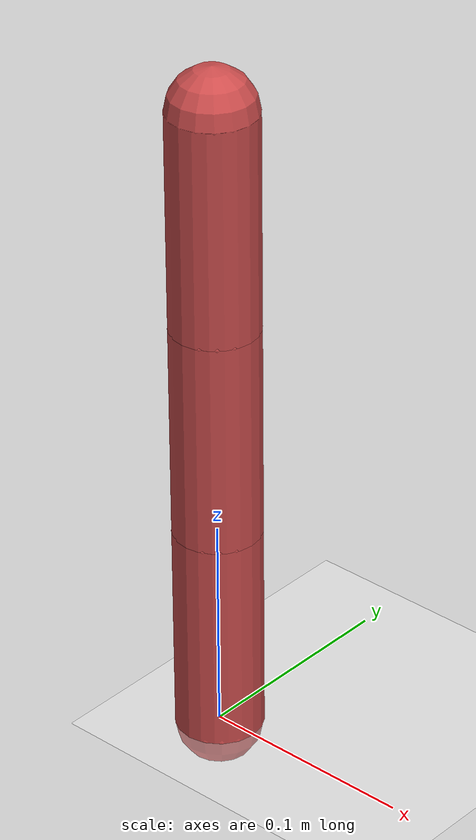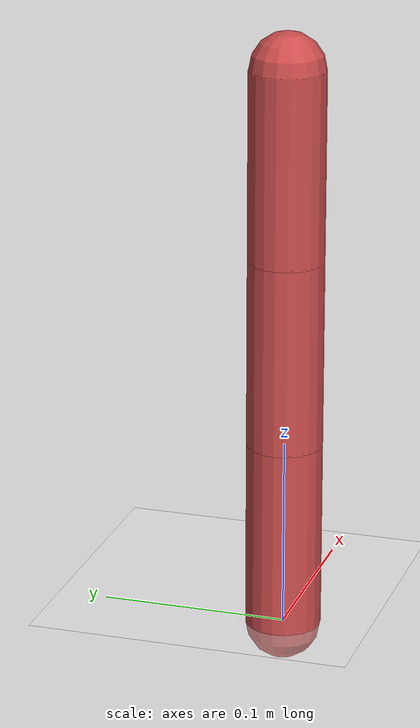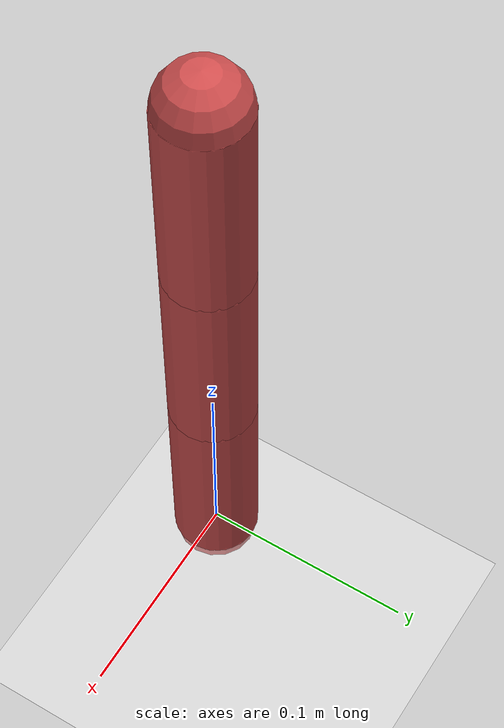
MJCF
<mujoco model="triple_pendulum_finger">

  <!-- Opciones generales de simulación -->
  <option gravity="0 0 -9.81" timestep="0.002"/>

  <!-- Defaults: parámetros comunes para joints y geoms, completa a gusto -->
  <default>
    <joint type="hinge" axis="0 1 0" damping="0.1"/>
    <geom type="capsule" size="0.02" rgba="0.8 0.3 0.3 1"/>
  </default>

  <visual>
    <!-- Sube la luz ambiental general para que la escena no se vea oscura -->
    <headlight ambient="0.4 0.4 0.4" diffuse="0.6 0.6 0.6" specular="0.1 0.1 0.1"/>
  </visual>

  <asset>
    <!-- Fondo azul solido (mismo color en rgb1/rgb2 = sin degradado) -->
    <texture type="skybox" builtin="flat" rgb1="0.4 0.6 0.9" rgb2="0.4 0.6 0.9" width="512" height="512"/>

    <!-- Textura y material del piso -->
    <texture name="ground_tex" type="2d" builtin="checker" mark="edge"
             rgb1="0.8 0.8 0.8" rgb2="0.65 0.65 0.65" markrgb="1 1 1"
             width="300" height="300"/>
    <material name="ground_mat" texture="ground_tex" texuniform="true" texrepeat="5 5" reflectance="0"/>
  </asset>

  <worldbody>
    <!-- Luz y suelo de referencia (opcional, borra si no lo necesitas) -->

    <!-- Piso -->
    <geom name="floor" type="plane" size="0 0 0.05" material="ground_mat" rgba="1 1 1 1" pos="0 0 0"/>

    <!-- Base fija desde donde cuelga el péndulo -->
    <body name="base" pos="0 0 0">

      <!-- Segmento 1: falange proximal -->
      <body name="link1" pos="0 0 0">
        <joint name="joint1"/>
        <geom name="geom1" fromto="0 0 0  0 0 0.1"/>

        <!-- Segmento 2: falange media -->
        <body name="link2" pos="0 0 0.1">
          <joint name="joint2"/>
          <geom name="geom2" fromto="0 0 0  0 0 0.1"/>

          <!-- Segmento 3: falange distal -->
          <body name="link3" pos="0 0 0.1">
            <joint name="joint3"/>
            <geom name="geom3" fromto="0 0 0  0 0 0.1"/>

            <!-- Punta del dedo, para leer su posicion en el mundo -->
            <site name="tip" pos="0 0 0.1" size="0.008" rgba="0 1 0 1"/>
          </body>

        </body>
      </body>

    </body>
  </worldbody>

  <!-- Actuadores de posicion, uno por joint. Ajusta kp y ctrlrange a gusto -->
  <actuator>
    <position name="pos1" joint="joint1" kp="30" ctrlrange="-1.57 1.57"/>
    <position name="pos2" joint="joint2" kp="30" ctrlrange="-1.57 1.57"/>
    <position name="pos3" joint="joint3" kp="30" ctrlrange="-1.57 1.57"/>
  </actuator>

  <!-- Sensores de angulo por joint: el viewer los grafica solo en tiempo real -->
  <sensor>
    <jointpos name="sens_joint1" joint="joint1"/>
    <jointpos name="sens_joint2" joint="joint2"/>
    <jointpos name="sens_joint3" joint="joint3"/>
  </sensor>

</mujoco>
